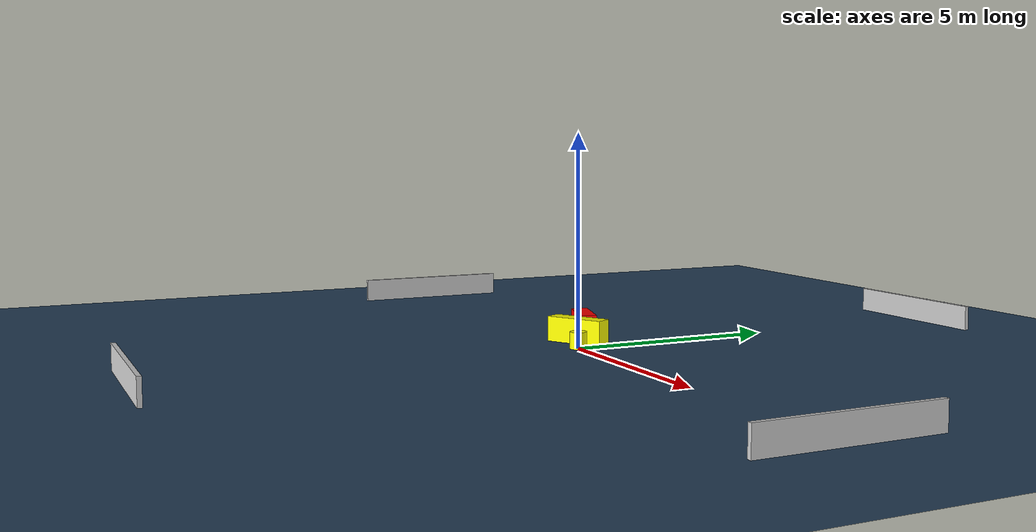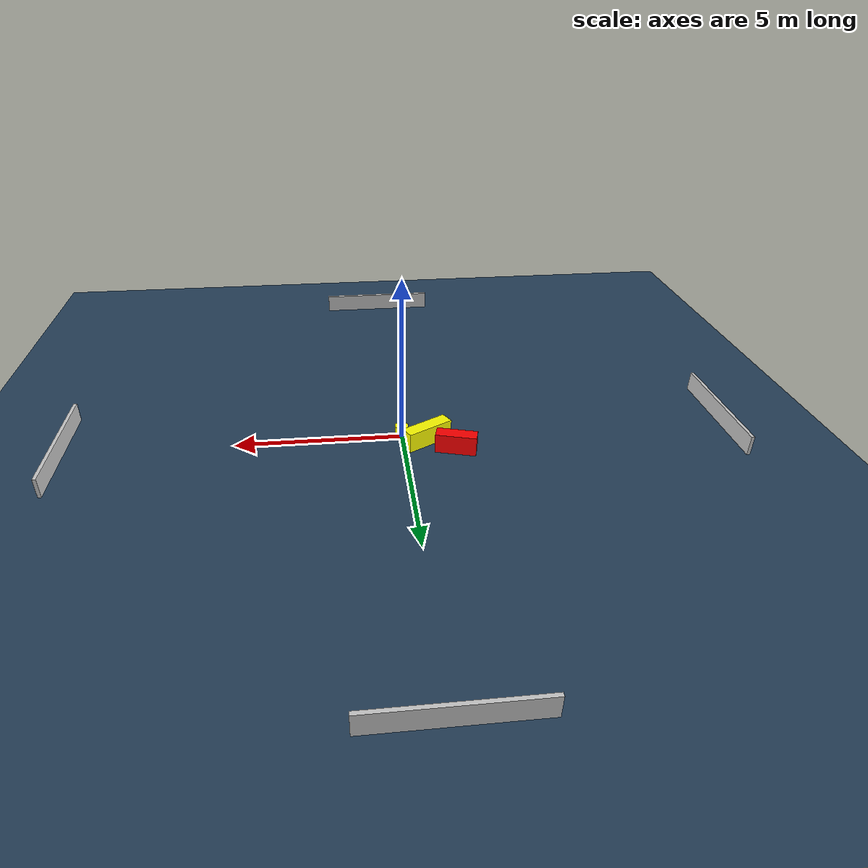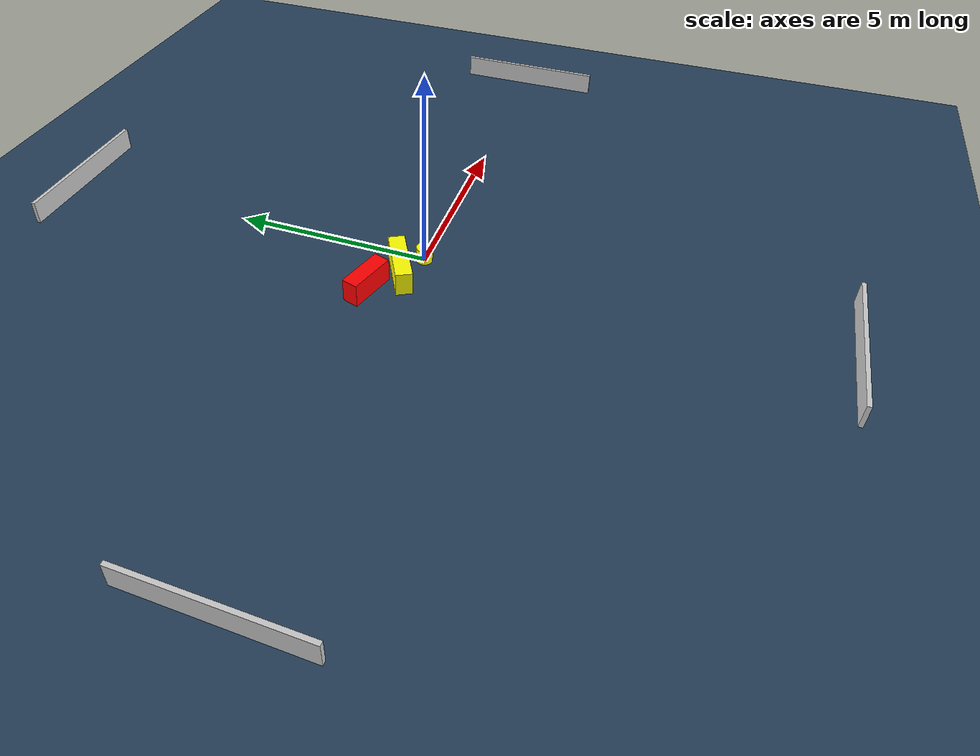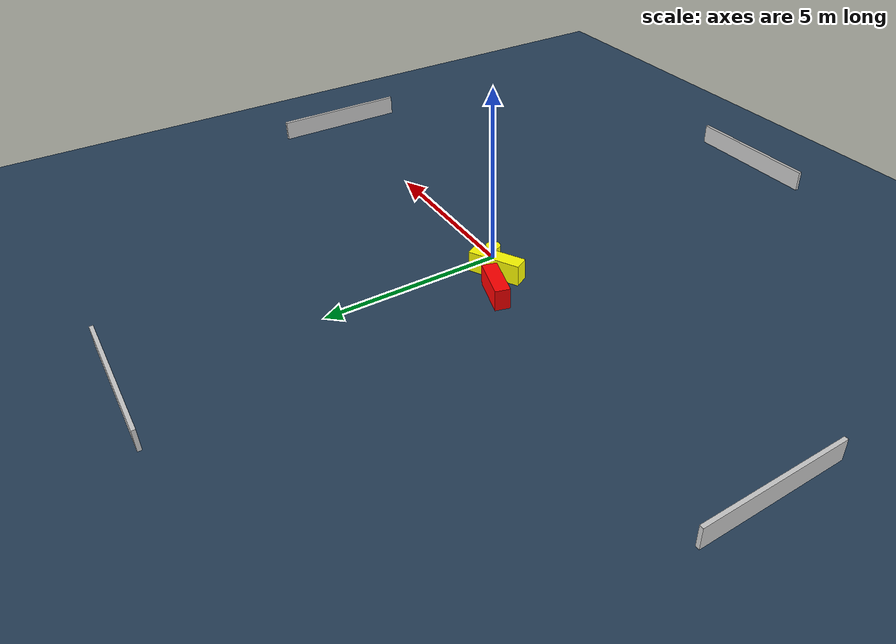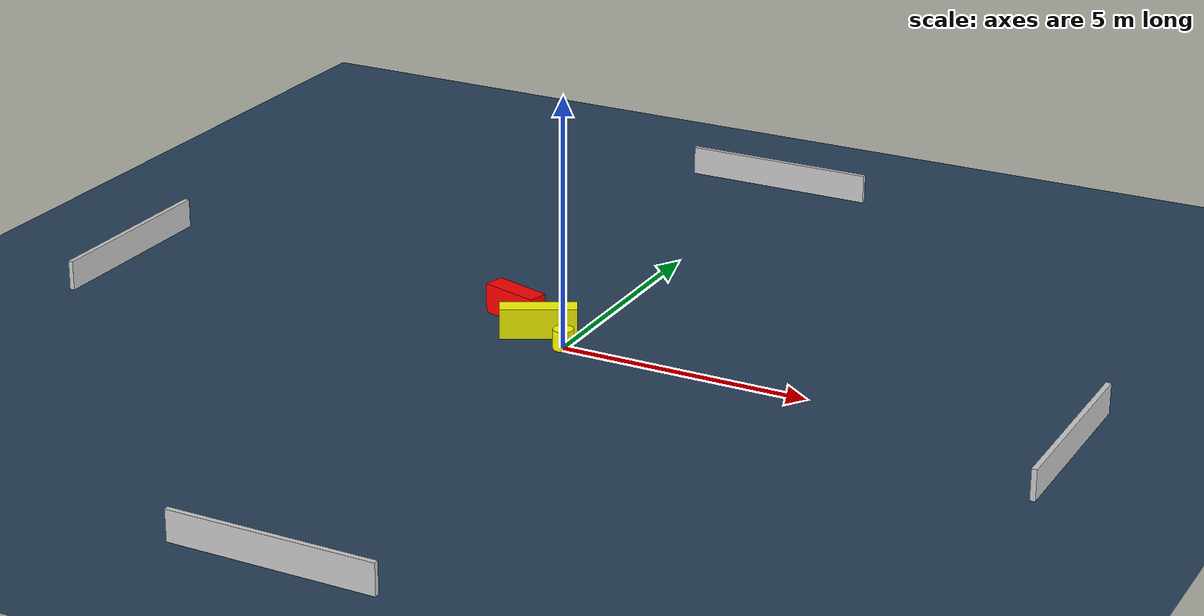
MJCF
<?xml version="1.0" ?>
<mujoco model="generated_environment">
  <option timestep="0.01" integrator="RK4" cone="elliptic"/>
  <default>
    <geom density="1"/>
  </default>
  <asset>
    <texture builtin="gradient" height="3072" name="skybox" rgb1="0.3 0.5 0.7" rgb2="0 0 0" type="skybox" width="512"/>
    <texture builtin="checker" height="300" name="groundplane" rgb1="0.2 0.3 0.4" rgb2="0.1 0.2 0.3" type="2d" width="300"/>
    <material name="groundplane" reflectance="0.2" texrepeat="5 5" texture="groundplane"/>
  </asset>
  <worldbody>
    <light dir="0 0 -1" directional="true" pos="0 0 1.5"/>
    <geom condim="3" friction="0.5 0.005 0.001" material="groundplane" name="floor" pos="0 0 0" size="0 0 0.05" type="plane"/>
    <body name="walls">
      <geom name="wall_1" condim="4" pos="-10.0 0.0 0.3" rgba="0.800000011920929 0.800000011920929 0.800000011920929 1.0" size="0.05 2.0 0.3" type="box"/>
      <geom name="wall_2" condim="4" pos="10.0 0.0 0.3" rgba="0.800000011920929 0.800000011920929 0.800000011920929 1.0" size="0.05 2.0 0.3" type="box"/>
      <geom name="wall_3" condim="4" pos="0.0 -10.0 0.3" rgba="0.800000011920929 0.800000011920929 0.800000011920929 1.0" size="2.0 0.05 0.3" type="box"/>
      <geom name="wall_4" condim="4" pos="0.0 10.0 0.3" rgba="0.800000011920929 0.800000011920929 0.800000011920929 1.0" size="2.0 0.05 0.3" type="box"/>
    </body>
    <body name="robot">
      <joint name="joint_x" type="slide" pos="0 0 0" axis="1 0 0"/>
      <joint name="joint_y" type="slide" pos="0 0 0" axis="0 1 0"/>
      <geom name="robot" type="cylinder" pos="0.0 0.0 0.2" size="0.2 0.2 0.0" mass="5.0" friction="1.0 0.005 0.0001" condim="4" rgba="1.0 1.0 0.0 1.0"/>
    </body>
    <body name="obstacle_1_movable">
      <geom name="obstacle_1_movable" condim="4" pos="-0.7239668001049953 0.35423887535995646 0.3" euler="0 0 118.57090274966058" friction="0.0 0.005 0.001" rgba="1.0 1.0 0.0 1.0" size="0.2055856954987249 0.7437044954857202 0.3" type="box" mass="0.1"/>
      <joint type="free"/>
    </body>
    <body name="obstacle_2_static">
      <geom name="obstacle_2_static" condim="4" pos="-1.5181927586100343 0.9004192235861567 0.3" euler="0 0 73.83595579181103" friction="0.0 0.005 0.001" rgba="1.0 0.0 0.0 1.0" size="0.20448815012433766 0.6038005468892308 0.3" type="box"/>
    </body>
  </worldbody>
  <actuator>
    <motor name="actuator_x" joint="joint_x" gear="1" ctrlrange="-1 1"/>
    <motor name="actuator_y" joint="joint_y" gear="1" ctrlrange="-1 1"/>
  </actuator>
</mujoco>
